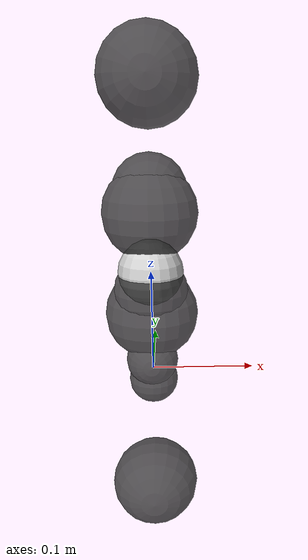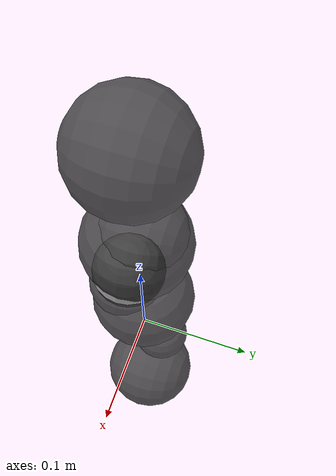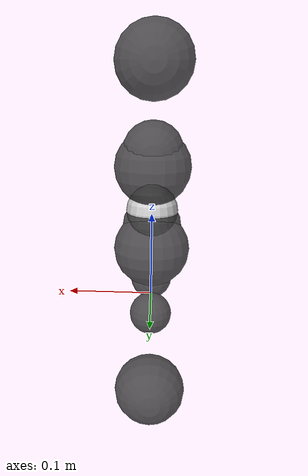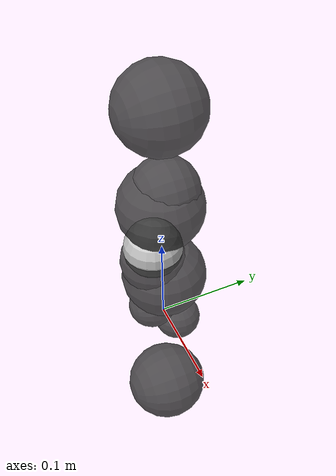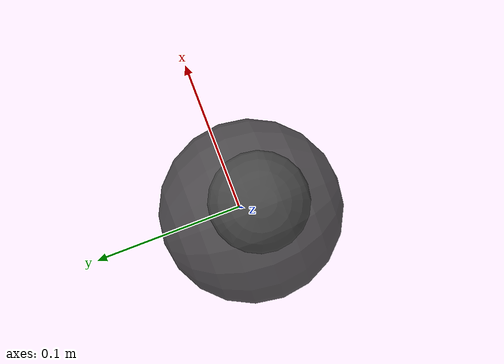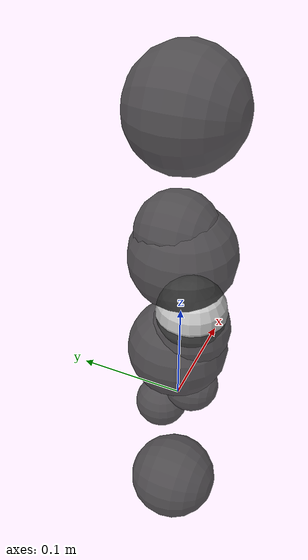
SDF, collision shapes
<?xml version="1.0"?>
<sdf version='1.6'>
<!--
SDF automatically generated with: gz sdf -p /my_urdf.urdf > /my_sdf.sdf

Later edited by hand to:
* add collision geometries to all links
* add velocity and effort limits
-->
  <model name='j2s7s300_arm'>
    <link name='base'>
      <pose>0 0 0 0 -0 0</pose>
      <inertial>
        <pose>0 0 0.1255 0 -0 0</pose>
        <mass>0.46784</mass>
        <inertia>
          <ixx>0.000951271</ixx>
          <ixy>0</ixy>
          <ixz>0</ixz>
          <iyy>0.000951271</iyy>
          <iyz>0</iyz>
          <izz>0.000374272</izz>
        </inertia>
      </inertial>
      <visual name='base_visual'>
        <pose>0 0 0 0 -0 0</pose>
        <geometry>
          <mesh>
            <scale>1 1 1</scale>
            <uri>package://drake/manipulation/models/jaco_description/meshes/base.obj</uri>
          </mesh>
        </geometry>
        <material>
          <diffuse>0.1788232 0.1788232 0.1788232 0.8</diffuse>
        </material>
      </visual>
    </link>
    <link name='j2s7s300_link_1'>
      <pose>0 0 0.15675 3.14159 -0 3.14159</pose>
      <inertial>
        <pose>0 -0.002 -0.0605 0 -0 0</pose>
        <mass>0.7477</mass>
        <inertia>
          <ixx>0.00152032</ixx>
          <ixy>0</ixy>
          <ixz>0</ixz>
          <iyy>0.00152032</iyy>
          <iyz>0</iyz>
          <izz>0.00059816</izz>
        </inertia>
      </inertial>

      <visual name='j2s7s300_link_1_visual'>
        <pose>0 0 0 0 -0 0</pose>
        <geometry>
          <mesh>
            <scale>1 1 1</scale>
            <uri>package://drake/manipulation/models/jaco_description/meshes/shoulder.obj</uri>
          </mesh>
        </geometry>
        <material>
          <diffuse>0.1788232 0.1788232 0.1788232 0.8</diffuse>
        </material>
      </visual>
      <visual name='j2s7s300_link_1_visual2'>
        <pose>0 0 0 0 -0 0</pose>
        <geometry>
          <mesh>
            <scale>1 1 1</scale>
            <uri>package://drake/manipulation/models/jaco_description/meshes/ring_big.obj</uri>
          </mesh>
        </geometry>
        <material>
          <diffuse>0.627451 0.627451 0.627451 0.8</diffuse>
        </material>
      </visual>
      <visual name='j2s7s300_link_1_contact_visual'>
        <pose>0 0 0 0 -0 0</pose>
        <geometry>
          <sphere>
            <radius>0.045</radius>
          </sphere>
        </geometry>
        <material>
          <diffuse>0.8 0.8 0.8 1.0</diffuse>
        </material>
      </visual>

      <collision name='j2s7s300_link_1_contact'>
        <pose>0 0 0 0 0 0</pose>
        <geometry>
          <sphere>
            <radius>0.045</radius>
          </sphere>
        </geometry>
        <surface>
          <friction>
          <ode>
            <mu>0.5</mu>
            <mu2>0.5</mu2>
          </ode>
          </friction>
        </surface>
      </collision>

    </link>
    <joint name='j2s7s300_joint_1' type='revolute'>
      <child>j2s7s300_link_1</child>
      <parent>base</parent>
      <axis>
        <xyz>-0 0 -1</xyz>
        <limit>
          <lower>-6.28</lower>
          <upper>6.28</upper>
          <effort>40</effort>
          <velocity>0.63</velocity>
        </limit>
        <dynamics>
          <damping>0</damping>
          <friction>0</friction>
          <spring_reference>0</spring_reference>
          <spring_stiffness>0</spring_stiffness>
        </dynamics>
        <use_parent_model_frame>1</use_parent_model_frame>
      </axis>
    </joint>
    <link name='j2s7s300_link_2'>
      <pose>0 0.0016 0.2755 1.5708 0 -0</pose>
      <inertial>
        <pose>0 -0.103563 0 0 -0 0</pose>
        <mass>0.8447</mass>
        <inertia>
          <ixx>0.00247074</ixx>
          <ixy>0</ixy>
          <ixz>0</ixz>
          <iyy>0.000380115</iyy>
          <iyz>0</iyz>
          <izz>0.00247074</izz>
        </inertia>
      </inertial>

      <visual name='j2s7s300_link_2_visual'>
        <pose>0 0 0 0 -0 0</pose>
        <geometry>
          <mesh>
            <scale>1 1 1</scale>
            <uri>package://drake/manipulation/models/jaco_description/meshes/arm_half_1.obj</uri>
          </mesh>
        </geometry>
        <material>
          <diffuse>0.1788232 0.1788232 0.1788232 0.8</diffuse>
        </material>
      </visual>
      <visual name='j2s7s300_link_2_visual2'>
        <pose>0 0 0 0 -0 0</pose>
        <geometry>
          <mesh>
            <scale>1 1 1</scale>
            <uri>package://drake/manipulation/models/jaco_description/meshes/ring_big.obj</uri>
          </mesh>
        </geometry>
        <material>
          <diffuse>0.627451 0.627451 0.627451 0.8</diffuse>
        </material>
      </visual>
      <visual name='j2s7s300_link_2_contact_visual'>
        <pose>0 0 0 0 -0 0</pose>
        <geometry>
          <sphere>
            <radius>0.045</radius>
          </sphere>
        </geometry>
        <material>
          <diffuse>0.8 0.8 0.8 1.0</diffuse>
        </material>
      </visual>

      <collision name='j2s7s300_link_2_contact'>
        <pose>0 0 0 0 0 0</pose>
        <geometry>
          <sphere>
            <radius>0.045</radius>
          </sphere>
        </geometry>
        <surface>
          <friction>
          <ode>
            <mu>0.5</mu>
            <mu2>0.5</mu2>
          </ode>
          </friction>
        </surface>
      </collision>

    </link>
    <joint name='j2s7s300_joint_2' type='revolute'>
      <child>j2s7s300_link_2</child>
      <parent>j2s7s300_link_1</parent>
      <axis>
        <xyz>-0 -1 -0</xyz>
        <limit>
          <lower>0.820305</lower>
          <upper>5.46288</upper>
          <effort>80</effort>
          <velocity>0.63</velocity>
        </limit>
        <dynamics>
          <damping>0</damping>
          <friction>0</friction>
          <spring_reference>0</spring_reference>
          <spring_stiffness>0</spring_stiffness>
        </dynamics>
        <use_parent_model_frame>1</use_parent_model_frame>
      </axis>
    </joint>
    <link name='j2s7s300_link_3'>
      <pose>-0 0.0016 0.0705 0 0 -0</pose>
      <inertial>
        <pose>0 0 -0.102245 0 -0 0</pose>
        <mass>0.8447</mass>
        <inertia>
          <ixx>0.00247074</ixx>
          <ixy>0</ixy>
          <ixz>0</ixz>
          <iyy>0.00247074</iyy>
          <iyz>0</iyz>
          <izz>0.000380115</izz>
        </inertia>
      </inertial>

      <visual name='j2s7s300_link_3_visual'>
        <pose>0 0 0 0 -0 0</pose>
        <geometry>
          <mesh>
            <scale>1 1 1</scale>
            <uri>package://drake/manipulation/models/jaco_description/meshes/arm_half_2.obj</uri>
          </mesh>
        </geometry>
        <material>
          <diffuse>0.1788232 0.1788232 0.1788232 0.8</diffuse>
        </material>
      </visual>
      <visual name='j2s7s300_link_3_visual2'>
        <pose>0 0 0 0 -0 0</pose>
        <geometry>
          <mesh>
            <scale>1 1 1</scale>
            <uri>package://drake/manipulation/models/jaco_description/meshes/ring_big.obj</uri>
          </mesh>
        </geometry>
        <material>
          <diffuse>0.627451 0.627451 0.627451 0.8</diffuse>
        </material>
      </visual>
      <visual name='j2s7s300_link_3_contact_visual'>
        <pose>0 0.015 -0.09 0 -0 0</pose>
        <geometry>
          <sphere>
            <radius>0.025</radius>
          </sphere>
        </geometry>
        <material>
          <diffuse>0.8 0.8 0.8 1.0</diffuse>
        </material>
      </visual>
      <visual name='j2s7s300_link_3_contact_visual2'>
        <pose>0 0 -0.012 0 -0 0</pose>
        <geometry>
          <sphere>
            <radius>0.045</radius>
          </sphere>
        </geometry>
        <material>
          <diffuse>0.8 0.8 0.8 1.0</diffuse>
        </material>
      </visual>

      <collision name='j2s7s300_link_3_contact'>
        <pose>0 0.015 -0.09 0 0 0</pose>
        <geometry>
          <sphere>
            <radius>0.025</radius>
          </sphere>
        </geometry>
        <surface>
          <friction>
          <ode>
            <mu>0.5</mu>
            <mu2>0.5</mu2>
          </ode>
          </friction>
        </surface>
      </collision>

      <collision name='j2s7s300_link_3_contact2'>
        <pose>0 0 -0.012 0 0 0</pose>
        <geometry>
          <sphere>
            <radius>0.045</radius>
          </sphere>
        </geometry>
        <surface>
          <friction>
          <ode>
            <mu>0.5</mu>
            <mu2>0.5</mu2>
          </ode>
          </friction>
        </surface>
      </collision>
    </link>
    <joint name='j2s7s300_joint_3' type='revolute'>
      <child>j2s7s300_link_3</child>
      <parent>j2s7s300_link_2</parent>
      <axis>
        <xyz>0 -0 1</xyz>
        <limit>
          <lower>-6.28</lower>
          <upper>6.28</upper>
          <effort>40</effort>
          <velocity>0.63</velocity>
        </limit>
        <dynamics>
          <damping>0</damping>
          <friction>0</friction>
          <spring_reference>0</spring_reference>
          <spring_stiffness>0</spring_stiffness>
        </dynamics>
        <use_parent_model_frame>1</use_parent_model_frame>
      </axis>
    </joint>
    <link name='j2s7s300_link_4'>
      <pose>-0 0.0016 -0.1345 1.5708 -0 -3.14159</pose>
      <inertial>
        <pose>0 0.081 -0.0086 0 -0 0</pose>
        <mass>0.6763</mass>
        <inertia>
          <ixx>1</ixx>
          <ixy>0</ixy>
          <ixz>0</ixz>
          <iyy>1</iyy>
          <iyz>0</iyz>
          <izz>1</izz>
        </inertia>
      </inertial>

      <visual name='j2s7s300_link_4_visual'>
        <pose>0 0 0 0 -0 0</pose>
        <geometry>
          <mesh>
            <scale>1 1 1</scale>
            <uri>package://drake/manipulation/models/jaco_description/meshes/forearm.obj</uri>
          </mesh>
        </geometry>
        <material>
          <diffuse>0.1788232 0.1788232 0.1788232 0.8</diffuse>
        </material>
      </visual>
      <visual name='j2s7s300_link_4_visual2'>
        <pose>0 0 0 0 -0 0</pose>
        <geometry>
          <mesh>
            <scale>1 1 1</scale>
            <uri>package://drake/manipulation/models/jaco_description/meshes/ring_small.obj</uri>
          </mesh>
        </geometry>
        <material>
          <diffuse>0.627451 0.627451 0.627451 0.8</diffuse>
        </material>
      </visual>
      <visual name='j2s7s300_link_4_contact_visual'>
        <pose>0 0.15 -0.015 0 -0 0</pose>
        <geometry>
          <sphere>
            <radius>0.025</radius>
          </sphere>
        </geometry>
        <material>
          <diffuse>0.8 0.8 0.8 1.0</diffuse>
        </material>
      </visual>
      <visual name='j2s7s300_link_4_contact_visual2'>
        <pose>0 0 0.0 0 -0 0</pose>
        <geometry>
          <sphere>
            <radius>0.045</radius>
          </sphere>
        </geometry>
        <material>
          <diffuse>0.8 0.8 0.8 1.0</diffuse>
        </material>
      </visual>

      <collision name='j2s7s300_link_4_contact'>
        <pose>0 0.15 -0.015 0 0 0</pose>
        <geometry>
          <sphere>
            <radius>0.025</radius>
          </sphere>
        </geometry>
        <surface>
          <friction>
          <ode>
            <mu>0.5</mu>
            <mu2>0.5</mu2>
          </ode>
          </friction>
        </surface>
      </collision>
      <collision name='j2s7s300_link_4_contact2'>
        <pose>0 0 0 0 0 0</pose>
        <geometry>
          <sphere>
            <radius>0.045</radius>
          </sphere>
        </geometry>
        <surface>
          <friction>
          <ode>
            <mu>0.5</mu>
            <mu2>0.5</mu2>
          </ode>
          </friction>
        </surface>
      </collision>

    </link>
    <joint name='j2s7s300_joint_4' type='revolute'>
      <child>j2s7s300_link_4</child>
      <parent>j2s7s300_link_3</parent>
      <axis>
        <xyz>0 1 0</xyz>
        <limit>
          <lower>0.523599</lower>
          <upper>5.75959</upper>
          <effort>40</effort>
          <velocity>0.63</velocity>
        </limit>
        <dynamics>
          <damping>0</damping>
          <friction>0</friction>
          <spring_reference>0</spring_reference>
          <spring_stiffness>0</spring_stiffness>
        </dynamics>
        <use_parent_model_frame>1</use_parent_model_frame>
      </axis>
    </joint>
    <link name='j2s7s300_link_5'>
      <pose>-0 -0.0098 0.0728 -3.14159 0 0</pose>
      <inertial>
        <pose>0 0.002885 -0.054193 0 -0 0</pose>
        <mass>0.463</mass>
        <inertia>
          <ixx>0.000432132</ixx>
          <ixy>0</ixy>
          <ixz>0</ixz>
          <iyy>0.000432132</iyy>
          <iyz>0</iyz>
          <izz>9.26e-05</izz>
        </inertia>
      </inertial>

      <visual name='j2s7s300_link_5_visual'>
        <pose>0 0 0 0 -0 0</pose>
        <geometry>
          <mesh>
            <scale>1 1 1</scale>
            <uri>package://drake/manipulation/models/jaco_description/meshes/wrist_spherical_1.obj</uri>
          </mesh>
        </geometry>
        <material>
          <diffuse>0.1788232 0.1788232 0.1788232 0.8</diffuse>
        </material>
      </visual>
      <visual name='j2s7s300_link_5_visual2'>
        <pose>0 0 0 0 -0 0</pose>
        <geometry>
          <mesh>
            <scale>1 1 1</scale>
            <uri>package://drake/manipulation/models/jaco_description/meshes/ring_small.obj</uri>
          </mesh>
        </geometry>
        <material>
          <diffuse>0.627451 0.627451 0.627451 0.8</diffuse>
        </material>
      </visual>
      <visual name='j2s7s300_link_5_contact_visual'>
        <pose>0 0 -0.012 0 -0 0</pose>
        <geometry>
          <sphere>
            <radius>0.035</radius>
          </sphere>
        </geometry>
        <material>
          <diffuse>0.8 0.8 0.8 1.0</diffuse>
        </material>
      </visual>

      <collision name='j2s7s300_link_5_contact'>
        <pose>0 0 -0.012 0 0 0</pose>
        <geometry>
          <sphere>
            <radius>0.035</radius>
          </sphere>
        </geometry>
        <surface>
          <friction>
          <ode>
            <mu>0.5</mu>
            <mu2>0.5</mu2>
          </ode>
          </friction>
        </surface>
      </collision>

    </link>
    <joint name='j2s7s300_joint_5' type='revolute'>
      <child>j2s7s300_link_5</child>
      <parent>j2s7s300_link_4</parent>
      <axis>
        <xyz>-0 0 -1</xyz>
        <limit>
          <lower>-6.28</lower>
          <upper>6.28</upper>
          <effort>20</effort>
          <velocity>0.85</velocity>
        </limit>
        <dynamics>
          <damping>0</damping>
          <friction>0</friction>
          <spring_reference>0</spring_reference>
          <spring_stiffness>0</spring_stiffness>
        </dynamics>
        <use_parent_model_frame>1</use_parent_model_frame>
      </axis>
    </joint>
    <link name='j2s7s300_link_6'>
      <pose>0 -0.0098 0.17655 -1.5708 -0 3.14159</pose>
      <inertial>
        <pose>0 0.049721 -0.002856 0 -0 0</pose>
        <mass>0.463</mass>
        <inertia>
          <ixx>0.000432132</ixx>
          <ixy>0</ixy>
          <ixz>0</ixz>
          <iyy>9.26e-05</iyy>
          <iyz>0</iyz>
          <izz>0.000432132</izz>
        </inertia>
      </inertial>

      <visual name='j2s7s300_link_6_visual'>
        <pose>0 0 0 0 -0 0</pose>
        <geometry>
          <mesh>
            <scale>1 1 1</scale>
            <uri>package://drake/manipulation/models/jaco_description/meshes/wrist_spherical_2.obj</uri>
          </mesh>
        </geometry>
        <material>
          <diffuse>0.1788232 0.1788232 0.1788232 0.8</diffuse>
        </material>
      </visual>
      <visual name='j2s7s300_link_6_visual2'>
        <pose>0 0 0 0 -0 0</pose>
        <geometry>
          <mesh>
            <scale>1 1 1</scale>
            <uri>package://drake/manipulation/models/jaco_description/meshes/ring_small.obj</uri>
          </mesh>
        </geometry>
        <material>
          <diffuse>0.627451 0.627451 0.627451 0.8</diffuse>
        </material>
      </visual>
      <visual name='j2s7s300_link_6_contact_visual'>
        <pose>0 0 -0.015 0 -0 0</pose>
        <geometry>
          <sphere>
            <radius>0.035</radius>
          </sphere>
        </geometry>
        <material>
          <diffuse>0.8 0.8 0.8 1.0</diffuse>
        </material>
      </visual>

      <collision name='j2s7s300_link_6_contact'>
        <pose>0 0 -0.015 0 0 0</pose>
        <geometry>
          <sphere>
            <radius>0.035</radius>
          </sphere>
        </geometry>
        <surface>
          <friction>
          <ode>
            <mu>0.5</mu>
            <mu2>0.5</mu2>
          </ode>
          </friction>
        </surface>
      </collision>

    </link>
    <joint name='j2s7s300_joint_6' type='revolute'>
      <child>j2s7s300_link_6</child>
      <parent>j2s7s300_link_5</parent>
      <axis>
        <xyz>-0 -1 -0</xyz>
        <limit>
          <lower>1.13446</lower>
          <upper>5.14872</upper>
          <effort>20</effort>
          <velocity>0.85</velocity>
        </limit>
        <dynamics>
          <damping>0</damping>
          <friction>0</friction>
          <spring_reference>0</spring_reference>
          <spring_stiffness>0</spring_stiffness>
        </dynamics>
        <use_parent_model_frame>1</use_parent_model_frame>
      </axis>
    </joint>
    <link name='j2s7s300_link_7'>
      <pose>-0 -0.0098 0.0728 0 0 -0</pose>
      <inertial>
        <pose>0 0 -0.06 0 -0 0</pose>
        <mass>0.001</mass>
        <inertia>
          <ixx>1</ixx>
          <ixy>0</ixy>
          <ixz>0</ixz>
          <iyy>1</iyy>
          <iyz>0</iyz>
          <izz>1</izz>
        </inertia>
      </inertial>

      <visual name='j2s7s300_link_7_contact_visual'>
        <pose>0 0 0.03 0 -0 0</pose>
        <geometry>
          <sphere>
            <radius>0.031</radius>
          </sphere>
        </geometry>
        <material>
          <diffuse>0.8 0.8 0.8 1.0</diffuse>
        </material>
      </visual>

      <collision name='j2s7s300_link_7_contact'>
        <pose>0 0 0.03 0 0 0</pose>
        <geometry>
          <sphere>
            <radius>0.031</radius>
          </sphere>
        </geometry>
        <surface>
          <friction>
          <ode>
            <mu>0.5</mu>
            <mu2>0.5</mu2>
          </ode>
          </friction>
        </surface>
      </collision>

    </link>
    <joint name='j2s7s300_joint_7' type='revolute'>
      <child>j2s7s300_link_7</child>
      <parent>j2s7s300_link_6</parent>
      <axis>
        <xyz>0 -0 1</xyz>
        <limit>
          <lower>-6.28</lower>
          <upper>6.28</upper>
          <effort>20</effort>
          <velocity>0.85</velocity>
        </limit>
        <dynamics>
          <damping>0</damping>
          <friction>0</friction>
          <spring_reference>0</spring_reference>
          <spring_stiffness>0</spring_stiffness>
        </dynamics>
        <use_parent_model_frame>1</use_parent_model_frame>
      </axis>
    </joint>
  </model>
</sdf>
